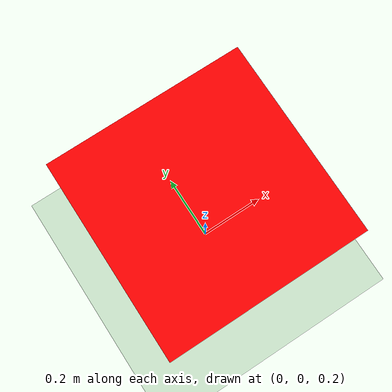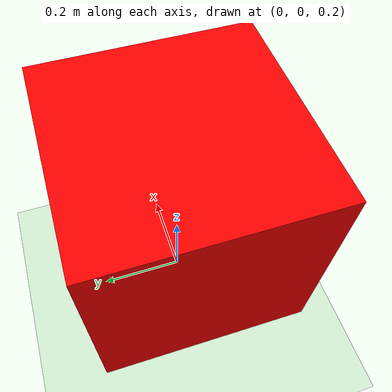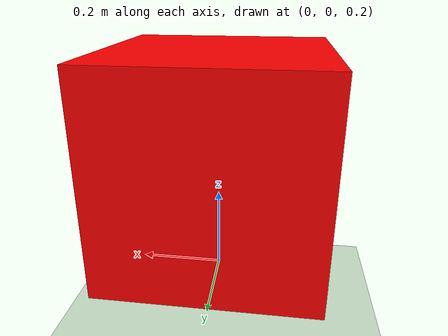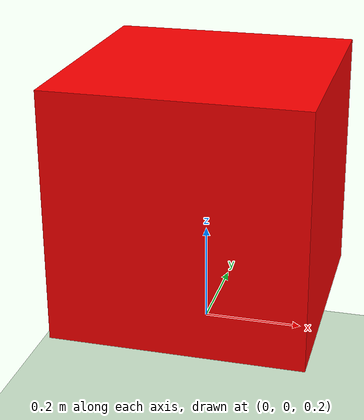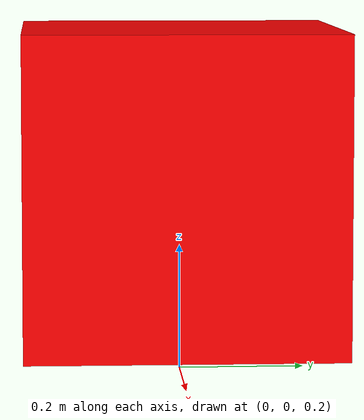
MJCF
<mujoco model="ant">
  <compiler angle="degree" coordinate="local" inertiafromgeom="true"/>
  <option integrator="RK4" timestep="0.01"/>
  <custom>
    <numeric data="0.0 0.0 0.55 1.0 0.0 0.0 0.0 0.0 1.0 0.0 -1.0 0.0 -1.0 0.0 1.0" name="init_qpos"/>
  </custom>
  <default>
    <joint armature="1" damping="1" limited="true"/>
    <geom conaffinity="0" condim="3" density="8.0" friction="0.25 0.5 0.5" margin="0.01" rgba="1.0 0.0 0.0 1"/>
  </default>
  <asset>
    <texture builtin="gradient" height="100" rgb1="1 1 1" rgb2="0 0 0" type="skybox" width="100"/>
    <texture builtin="flat" height="1278" mark="cross" markrgb="1 1 1" name="texgeom" random="0.01" rgb1="0.8 0.6 0.4" rgb2="0.8 0.6 0.4" type="cube" width="127"/>
    <texture builtin="checker" height="100" name="texplane" rgb1="0 0 0" rgb2="0.8 0.8 0.8" type="2d" width="100"/>
    <material name="MatPlane" reflectance="0.5" shininess="1" specular="1" texrepeat="60 60" texture="texplane"/>
    <material name="geom" texture="texgeom" texuniform="true"/>
  </asset>
  <worldbody>
    <light cutoff="100" diffuse="1 1 1" dir="-0 0 -1.3" directional="true" exponent="1" pos="0 0 1.3" specular=".1 .1 .1"/>
    <geom conaffinity="1" condim="3" material="MatPlane" name="floor" pos="0 0 0" rgba="0.8 0.9 0.8 1" size="40 40 40" type="plane"/>
    <body name="torso" pos="0 0 0.50">
      <camera name="track" mode="trackcom" pos="0 -3 0.3" xyaxes="1 0 0 0 0 1"/>
      <geom name="torso_geom" pos="0 0 0" size="0.25 0.25 0.25" type="box"/>
      <joint armature="0" axis="1 0 0" damping="0" limited="false" name="rootx" pos="0 0 0" stiffness="0" type="slide"/>
      <joint armature="0" axis="0 1 0" damping="0" limited="false" name="rooty" pos="0 0 0" stiffness="0" type="slide"/>
      <joint armature="0" axis="0 0 1" damping="0" limited="false" name="rootz" pos="0 0 0" stiffness="0" type="slide"/>
      <joint armature="0" axis="1 0 0" damping="0" limited="false" name="rotx" pos="0 0 0.0" stiffness="0" type="hinge"/>
      <joint armature="0" axis="0 1 0" damping="0" limited="false" name="roty" pos="0 0 0.0" stiffness="0" type="hinge"/>
      <joint armature="0" axis="0 0 1" damping="0" limited="false" name="rotz" pos="0 0 0.0" stiffness="0" type="hinge"/>
    </body>
  </worldbody>
  <actuator>
    <motor ctrllimited="false" gear="10.0" joint="rootx"/>
    <motor ctrllimited="false" gear="10.0" joint="rooty"/>
    <motor ctrllimited="false" gear="10.0" joint="rootz"/>
  </actuator>
</mujoco>
